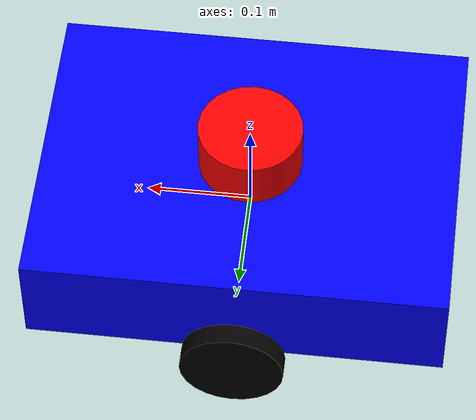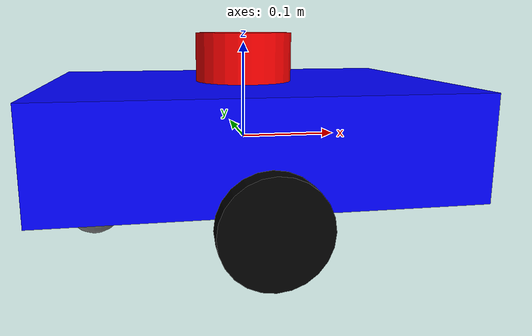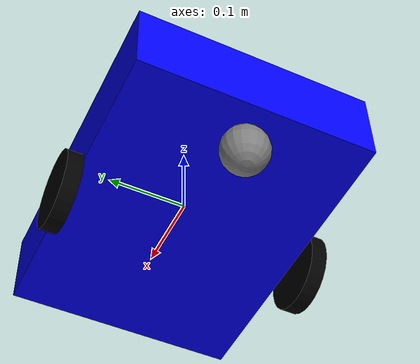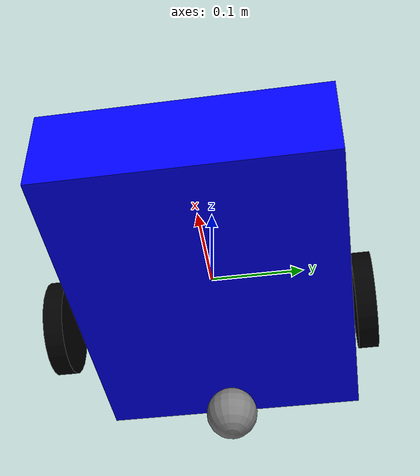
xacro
<?xml version="1.0"?>
<robot name="simple_robot" xmlns:xacro="http://www.ros.org/wiki/xacro">

  <!-- ================= 参数 ================= -->
  <xacro:property name="base_length" value="0.40"/>
  <xacro:property name="base_width"  value="0.30"/>
  <xacro:property name="base_height" value="0.10"/>

  <xacro:property name="wheel_radius" value="0.05"/>
  <xacro:property name="wheel_width"  value="0.02"/>

  <!-- 万向轮比驱动轮略小，减少卡顿和摩擦拖拽 -->
  <xacro:property name="caster_radius" value="0.03"/>

  <xacro:property name="lidar_radius" value="0.05"/>
  <xacro:property name="lidar_height" value="0.05"/>

  <!-- 轮子中心高度：让底盘底面离地，不再蹭地 -->
  <!-- base底面 = wheel_center_z + base_height/2 -->
  <!-- 这里设为 -(wheel_radius + 0.01)，留一点离地间隙 -->
  <xacro:property name="wheel_z" value="-0.06"/>

  <!-- 轮子左右位置：略微外移，避免与底盘侧面干涉 -->
  <xacro:property name="wheel_y" value="0.16"/>

  <!-- 万向轮位置：后方，且高度与地面合理接触 -->
  <xacro:property name="caster_x" value="-0.16"/>
  <xacro:property name="caster_z" value="-0.08"/>

  <!-- ================= base_footprint ================= -->
  <link name="base_footprint"/>

  <joint name="base_footprint_joint" type="fixed">
    <parent link="base_footprint"/>
    <child link="base_link"/>
    <origin xyz="0 0 ${wheel_radius + 0.01 - base_height/2}" rpy="0 0 0"/>
  </joint>

  <!-- ================= 底盘 ================= -->
  <link name="base_link">
    <inertial>
      <origin xyz="0 0 0" rpy="0 0 0"/>
      <mass value="5.0"/>
      <inertia
        ixx="0.10" ixy="0.0" ixz="0.0"
        iyy="0.10" iyz="0.0"
        izz="0.10"/>
    </inertial>

    <visual>
      <origin xyz="0 0 0" rpy="0 0 0"/>
      <geometry>
        <box size="${base_length} ${base_width} ${base_height}"/>
      </geometry>
      <material name="blue">
        <color rgba="0 0 1 1"/>
      </material>
    </visual>

    <collision>
      <origin xyz="0 0 0" rpy="0 0 0"/>
      <geometry>
        <box size="${base_length} ${base_width} ${base_height}"/>
      </geometry>
    </collision>
  </link>

  <gazebo reference="base_link">
    <material>Gazebo/Blue</material>
    <mu1>0.2</mu1>
    <mu2>0.2</mu2>
    <kp>1000000.0</kp>
    <kd>100.0</kd>
  </gazebo>

  <!-- ================= 轮子宏 ================= -->
  <xacro:macro name="wheel" params="name y_pos">

    <link name="${name}">
      <inertial>
        <origin xyz="0 0 0" rpy="0 0 0"/>
        <mass value="0.5"/>
        <inertia
          ixx="0.001" ixy="0.0" ixz="0.0"
          iyy="0.001" iyz="0.0"
          izz="0.001"/>
      </inertial>

      <visual>
        <origin xyz="0 0 0" rpy="1.57079632679 0 0"/>
        <geometry>
          <cylinder radius="${wheel_radius}" length="${wheel_width}"/>
        </geometry>
        <material name="black">
          <color rgba="0 0 0 1"/>
        </material>
      </visual>

      <collision>
        <origin xyz="0 0 0" rpy="1.57079632679 0 0"/>
        <geometry>
          <cylinder radius="${wheel_radius}" length="${wheel_width}"/>
        </geometry>
      </collision>
    </link>

    <gazebo reference="${name}">
      <material>Gazebo/Black</material>
      <mu1>2.0</mu1>
      <mu2>2.0</mu2>
      <kp>1000000.0</kp>
      <kd>100.0</kd>
      <minDepth>0.001</minDepth>
      <maxVel>1.0</maxVel>
    </gazebo>

    <!-- 差速轮应连续转动 -->
    <joint name="${name}_joint" type="continuous">
      <parent link="base_link"/>
      <child link="${name}"/>
      <origin xyz="0 ${y_pos} ${wheel_z}" rpy="0 0 0"/>
      <axis xyz="0 1 0"/>
    </joint>

  </xacro:macro>

  <!-- 左右驱动轮 -->
  <xacro:wheel name="wheel_left_link"  y_pos="${ wheel_y}"/>
  <xacro:wheel name="wheel_right_link" y_pos="${-wheel_y}"/>

  <!-- ================= 万向轮 ================= -->
  <link name="caster_link">
    <inertial>
      <origin xyz="0 0 0" rpy="0 0 0"/>
      <mass value="0.2"/>
      <inertia
        ixx="0.0005" ixy="0.0" ixz="0.0"
        iyy="0.0005" iyz="0.0"
        izz="0.0005"/>
    </inertial>

    <visual>
      <origin xyz="0 0 0" rpy="0 0 0"/>
      <geometry>
        <sphere radius="${caster_radius}"/>
      </geometry>
      <material name="gray">
        <color rgba="0.5 0.5 0.5 1"/>
      </material>
    </visual>

    <collision>
      <origin xyz="0 0 0" rpy="0 0 0"/>
      <geometry>
        <sphere radius="${caster_radius}"/>
      </geometry>
    </collision>
  </link>

  <gazebo reference="caster_link">
    <material>Gazebo/Grey</material>
    <mu1>0.05</mu1>
    <mu2>0.05</mu2>
    <kp>1000000.0</kp>
    <kd>100.0</kd>
    <minDepth>0.001</minDepth>
    <maxVel>1.0</maxVel>
  </gazebo>

  <joint name="caster_joint" type="fixed">
    <parent link="base_link"/>
    <child link="caster_link"/>
    <origin xyz="${caster_x} 0 ${caster_z}" rpy="0 0 0"/>
  </joint>

  <!-- ================= 激光雷达 ================= -->
  <link name="lidar_link">
    <inertial>
      <origin xyz="0 0 0" rpy="0 0 0"/>
      <mass value="0.2"/>
      <inertia
        ixx="0.0005" ixy="0.0" ixz="0.0"
        iyy="0.0005" iyz="0.0"
        izz="0.0005"/>
    </inertial>

    <visual>
      <origin xyz="0 0 0" rpy="0 0 0"/>
      <geometry>
        <cylinder radius="${lidar_radius}" length="${lidar_height}"/>
      </geometry>
      <material name="red">
        <color rgba="1 0 0 1"/>
      </material>
    </visual>

    <collision>
      <origin xyz="0 0 0" rpy="0 0 0"/>
      <geometry>
        <cylinder radius="${lidar_radius}" length="${lidar_height}"/>
      </geometry>
    </collision>
  </link>

  <gazebo reference="lidar_link">
    <material>Gazebo/Red</material>
  </gazebo>

  <joint name="lidar_joint" type="fixed">
    <parent link="base_link"/>
    <child link="lidar_link"/>
    <origin xyz="0 0 ${base_height/2 + lidar_height/2}" rpy="0 0 0"/>
  </joint>

  <!-- ================= Gazebo diff_drive 插件 ================= -->
  <gazebo>
    <plugin name="diff_drive" filename="libgazebo_ros_diff_drive.so">

      <leftJoint>wheel_left_link_joint</leftJoint>
      <rightJoint>wheel_right_link_joint</rightJoint>

      <wheelSeparation>0.32</wheelSeparation>
      <wheelDiameter>0.10</wheelDiameter>

      <robotBaseFrame>base_link</robotBaseFrame>

      <commandTopic>cmd_vel</commandTopic>
      <odometryTopic>odom</odometryTopic>

      <publishOdom>true</publishOdom>
      <publishOdomTF>true</publishOdomTF>
      <publishWheelTF>false</publishWheelTF>

      <odometryFrame>odom</odometryFrame>

      <updateRate>50</updateRate>
      <wheelAcceleration>5.0</wheelAcceleration>
      <wheelTorque>20.0</wheelTorque>

      <legacyMode>false</legacyMode>
    </plugin>
  </gazebo>

</robot>
